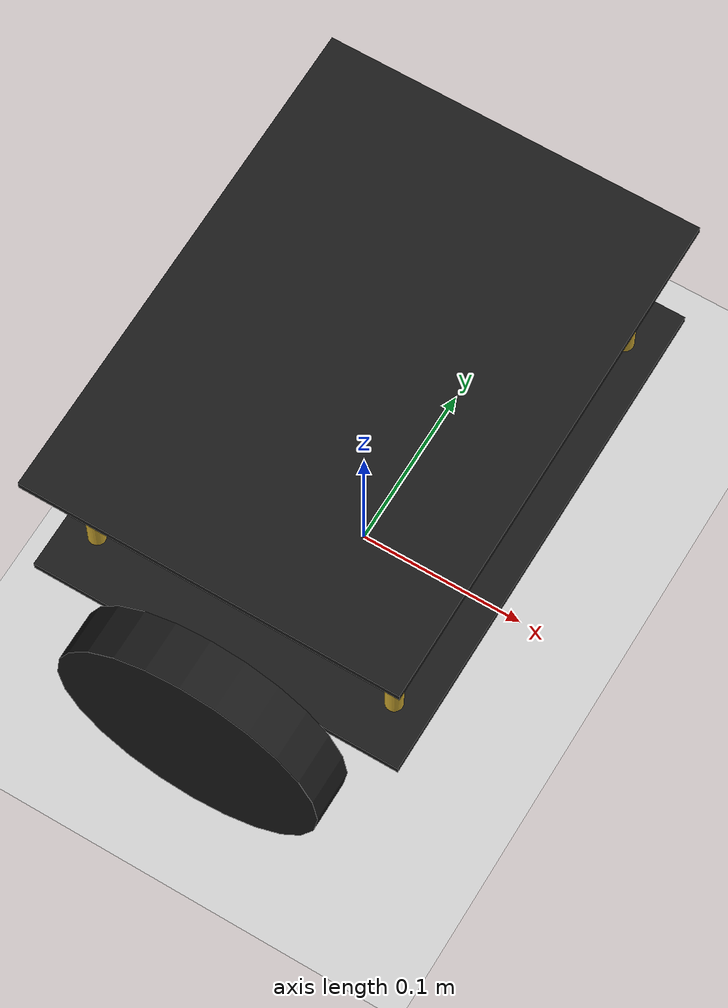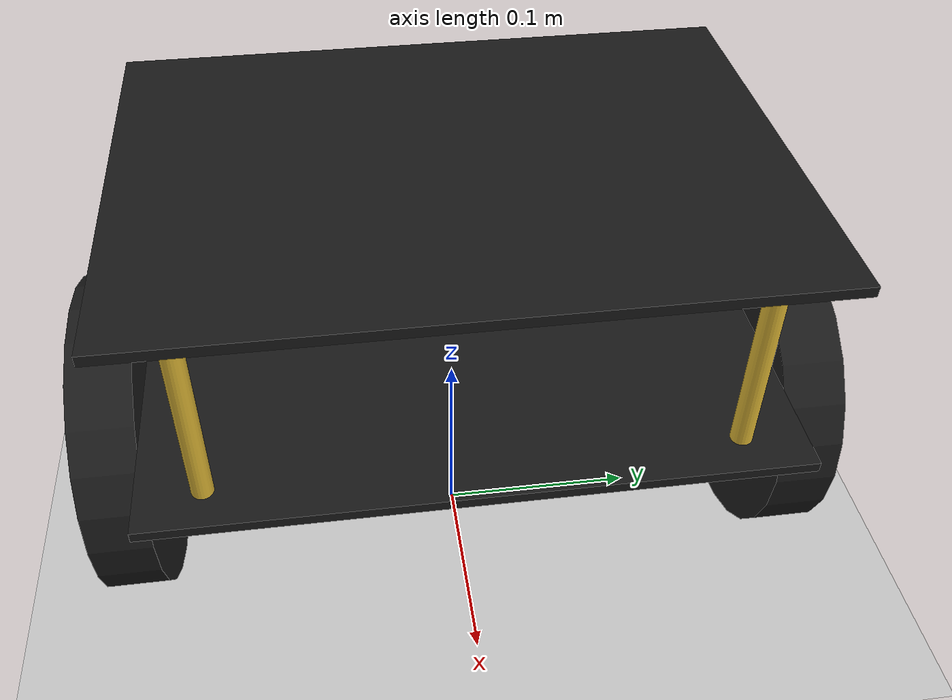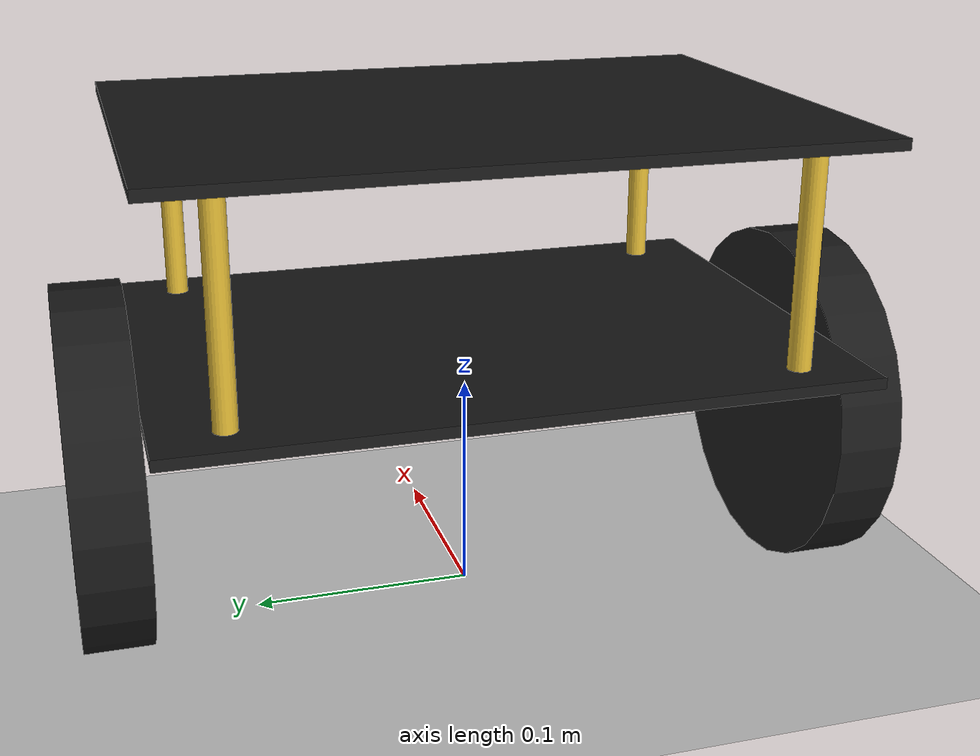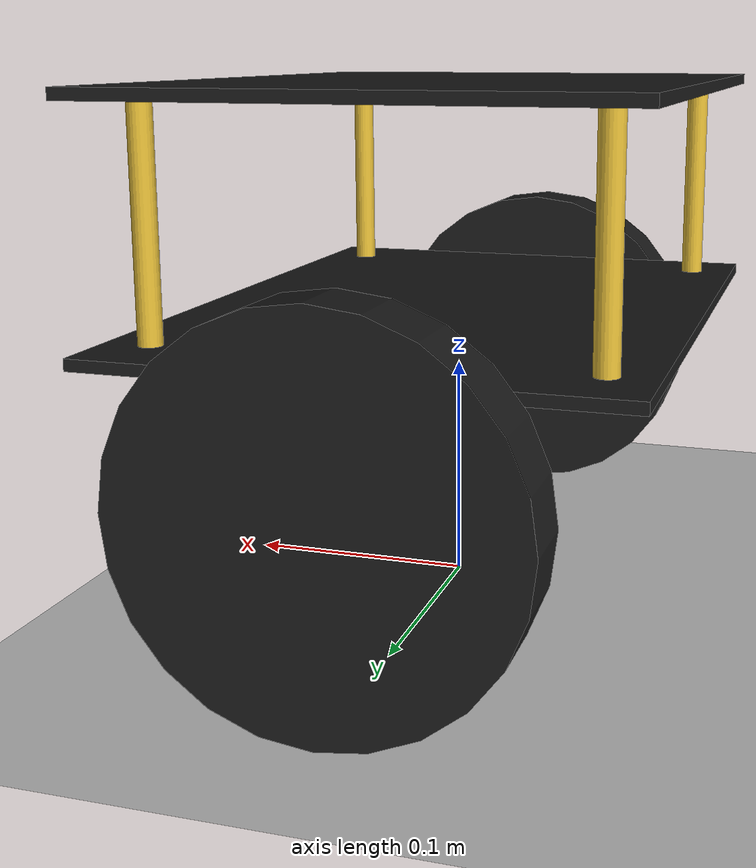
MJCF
<mujoco model="two_wheel_robot">
  <compiler angle="radian" inertiafromgeom="false"/>

  <option
    timestep="0.002"
    gravity="0 0 -9.81"
    integrator="RK4"/>

  <default>
    <joint
      damping="0.01"
      frictionloss="0.01"/>

    <geom
      friction="1.0 0.01 0.001"
      condim="3"/>

    <motor
      ctrllimited="true"
      ctrlrange="-2 2"/>
  </default>

  <worldbody>
    <light
      name="overhead_light"
      pos="0 0 3"/>

    <geom
      name="floor"
      type="plane"
      size="5 5 0.1"
      rgba="0.8 0.8 0.8 1"/>

    <!-- The body origin matches base_link after the fixed base_footprint offset. -->
    <body
      name="base_link"
      pos="0 0 0.08">

      <freejoint name="base_free_joint"/>

      <inertial
        pos="0 0 0.095"
        mass="0.80"
        diaginertia="0.0068067 0.0040333 0.0092267"/>

      <!-- Lower plate -->
      <geom
        name="lower_plate"
        type="box"
        pos="0 0 0.045"
        size="0.11 0.15 0.0025"
        rgba="0.1 0.1 0.1 1"
        contype="0"
        conaffinity="0"/>

      <!-- Upper plate -->
      <geom
        name="upper_plate"
        type="box"
        pos="0 0 0.145"
        size="0.11 0.15 0.0025"
        rgba="0.1 0.1 0.1 1"
        contype="0"
        conaffinity="0"/>

      <!-- Front left standoff -->
      <geom
        name="front_left_standoff"
        type="cylinder"
        pos="0.09 0.12 0.095"
        size="0.005 0.05"
        rgba="0.85 0.70 0.20 1"
        contype="0"
        conaffinity="0"/>

      <!-- Front right standoff -->
      <geom
        name="front_right_standoff"
        type="cylinder"
        pos="0.09 -0.12 0.095"
        size="0.005 0.05"
        rgba="0.85 0.70 0.20 1"
        contype="0"
        conaffinity="0"/>

      <!-- Rear left standoff -->
      <geom
        name="rear_left_standoff"
        type="cylinder"
        pos="-0.09 0.12 0.095"
        size="0.005 0.05"
        rgba="0.85 0.70 0.20 1"
        contype="0"
        conaffinity="0"/>

      <!-- Rear right standoff -->
      <geom
        name="rear_right_standoff"
        type="cylinder"
        pos="-0.09 -0.12 0.095"
        size="0.005 0.05"
        rgba="0.85 0.70 0.20 1"
        contype="0"
        conaffinity="0"/>

      <!-- Collision geometry from the URDF base_link. -->
      <geom
        name="base_link_collision"
        type="box"
        pos="0 0 0.095"
        size="0.11 0.15 0.055"
        rgba="0 0 0 0"
        contype="1"
        conaffinity="1"/>

      <body
        name="left_wheel"
        pos="0 0.165 0">

        <joint
          name="left_wheel_joint"
          type="hinge"
          axis="0 1 0"
          damping="0.01"
          frictionloss="0.01"/>

        <inertial
          pos="0 0 0"
          mass="0.5"
          diaginertia="0.0008375 0.0016000 0.0008375"/>

        <geom
          name="left_wheel_geom"
          type="cylinder"
          size="0.08 0.015"
          quat="0.70710678 0.70710678 0 0"
          rgba="0.1 0.1 0.1 1"/>
      </body>

      <body
        name="right_wheel"
        pos="0 -0.165 0">

        <joint
          name="right_wheel_joint"
          type="hinge"
          axis="0 1 0"
          damping="0.01"
          frictionloss="0.01"/>

        <inertial
          pos="0 0 0"
          mass="0.5"
          diaginertia="0.0008375 0.0016000 0.0008375"/>

        <geom
          name="right_wheel_geom"
          type="cylinder"
          size="0.08 0.015"
          quat="0.70710678 0.70710678 0 0"
          rgba="0.1 0.1 0.1 1"/>
      </body>

      <!-- The IMU is fixed at the base_link origin as defined in the URDF. -->
      <body
        name="imu_link"
        pos="0 0 0">

        <inertial
          pos="0 0 0"
          mass="0.01"
          diaginertia="0.0000007708 0.0000003542 0.0000010833"/>

        <site
          name="imu_site"
          pos="0 0 0"
          size="0.005"
          rgba="1 0 0 0"/>
      </body>
    </body>
  </worldbody>

  <actuator>
    <motor
      name="left_motor"
      joint="left_wheel_joint"
      gear="1"/>

    <motor
      name="right_motor"
      joint="right_wheel_joint"
      gear="1"/>
  </actuator>

  <sensor>
    <gyro
      name="imu_gyro"
      site="imu_site"
      noise="0.001"/>

    <accelerometer
      name="imu_accelerometer"
      site="imu_site"
      noise="0.01"/>

    <jointpos
      name="left_wheel_position"
      joint="left_wheel_joint"/>

    <jointpos
      name="right_wheel_position"
      joint="right_wheel_joint"/>

    <jointvel
      name="left_wheel_velocity"
      joint="left_wheel_joint"/>

    <jointvel
      name="right_wheel_velocity"
      joint="right_wheel_joint"/>

    <framequat
      name="base_orientation"
      objtype="body"
      objname="base_link"/>
  </sensor>
</mujoco>
